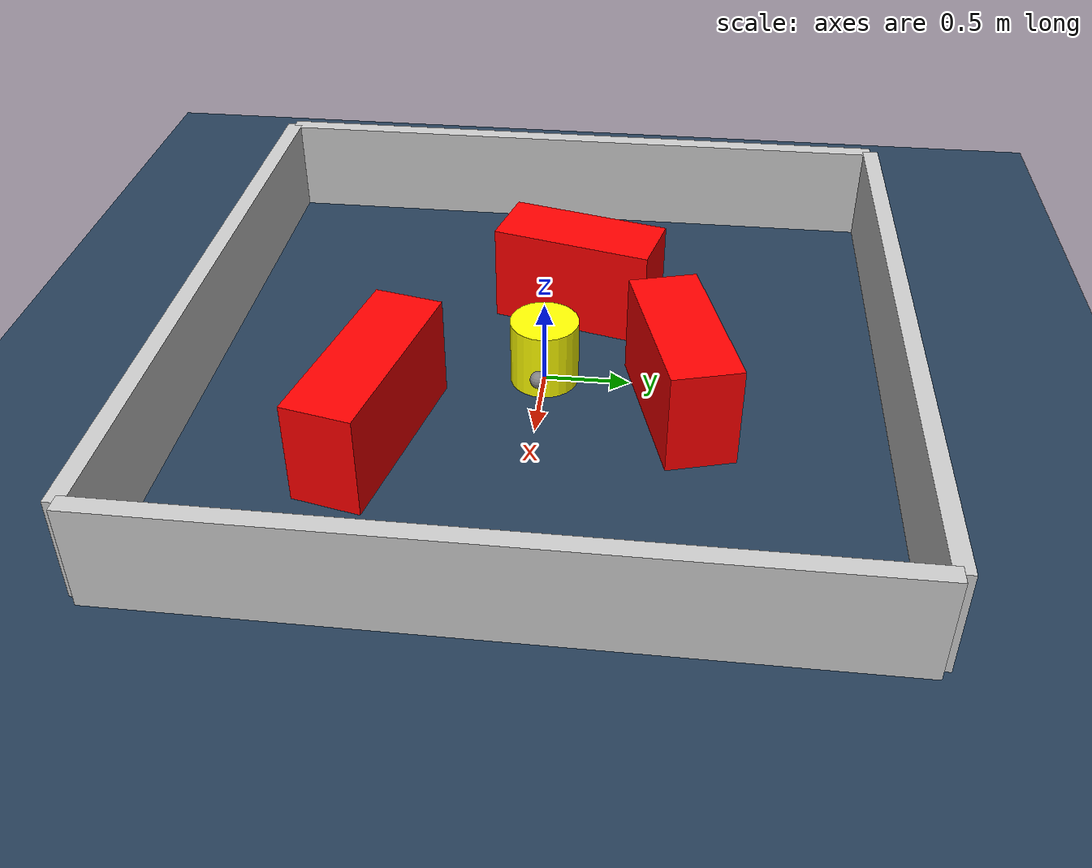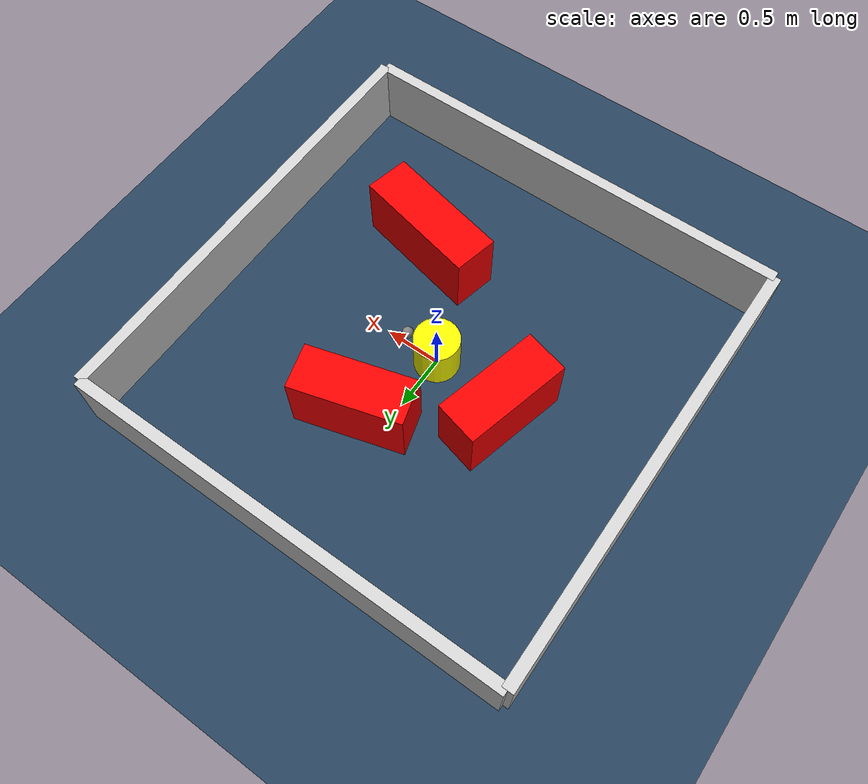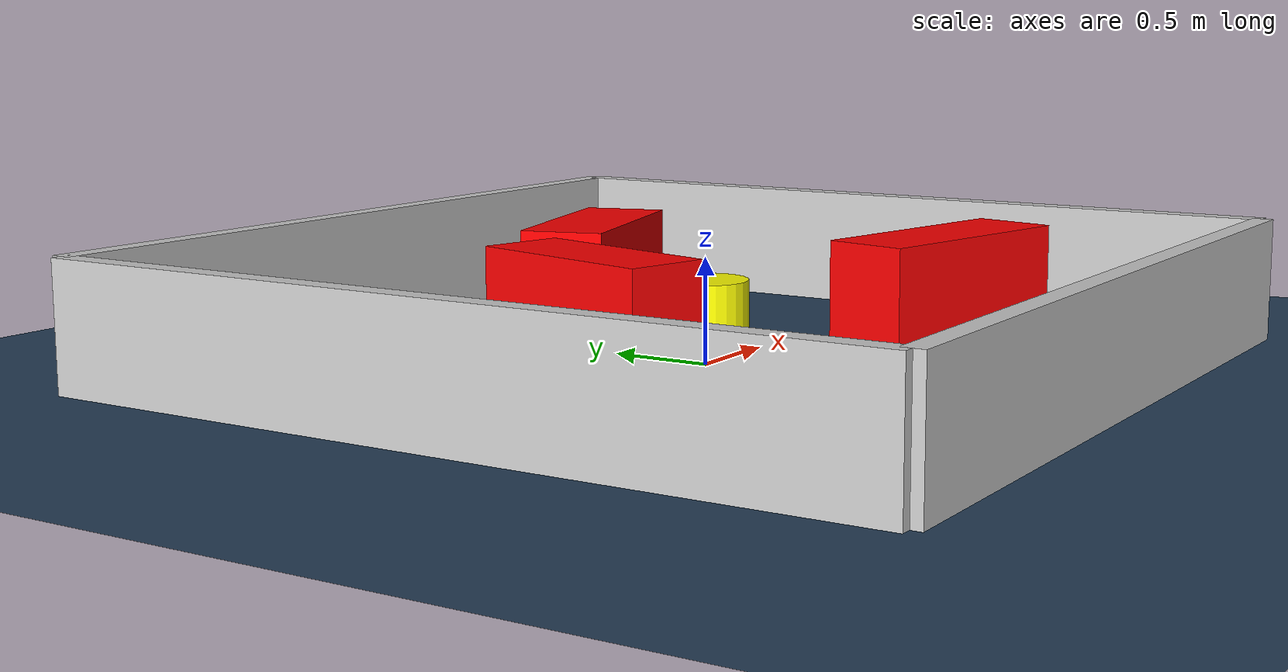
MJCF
<?xml version="1.0" ?>
<mujoco model="generated_environment">
  <option timestep="0.01" integrator="RK4" cone="elliptic"/>
  <default>
    <geom density="1"/>
  </default>
  <asset>
    <texture builtin="gradient" height="3072" rgb1="0.3 0.5 0.7" rgb2="0 0 0" type="skybox" width="512"/>
    <texture builtin="checker" height="300" mark="edge" markrgb="0.8 0.8 0.8" name="groundplane" rgb1="0.2 0.3 0.4" rgb2="0.1 0.2 0.3" type="2d" width="300"/>
    <material name="groundplane" reflectance="0.2" texrepeat="5 5" texture="groundplane" texuniform="true"/>
    <material name="robot" rgba="0.0 1.0 0.0 1"/>
  </asset>
  <worldbody>
    <light dir="0 0 -1" directional="true" pos="0 0 1.5"/>
    <geom condim="4" friction="1.0 0.005 0.001" material="groundplane" name="floor" size="0 0 0.05" type="plane"/>
    <body name="walls">
      <geom name="wall_1" condim="4" pos="-2.0 0.0 0.3" rgba="0.800000011920929 0.800000011920929 0.800000011920929 1.0" size="0.05 2.0 0.3" type="box"/>
      <geom name="wall_2" condim="4" pos="2.0 0.0 0.3" rgba="0.800000011920929 0.800000011920929 0.800000011920929 1.0" size="0.05 2.0 0.3" type="box"/>
      <geom name="wall_3" condim="4" pos="0.0 -2.0 0.3" rgba="0.800000011920929 0.800000011920929 0.800000011920929 1.0" size="2.0 0.05 0.3" type="box"/>
      <geom name="wall_4" condim="4" pos="0.0 2.0 0.3" rgba="0.800000011920929 0.800000011920929 0.800000011920929 1.0" size="2.0 0.05 0.3" type="box"/>
    </body>
    <body name="robot">
      <joint name="joint_x" type="slide" pos="0 0 0" axis="1 0 0"/>
      <joint name="joint_y" type="slide" pos="0 0 0" axis="0 1 0"/>
      <geom name="robot" type="sphere" pos="0.3 0.0 0.2" size="0.05" mass="5." friction="1.0 0.005 0.0001" condim="4" rgba="0.5 0.5 0.5 1.0"/>
      <site name="sensor_ball"/>
    </body>
    <body name="obstacle_movable_1">
      <geom name="obstacle_movable_1" condim="4" pos="0.0 0.0 0.2" euler="0 0 0.0" friction="1.0 0.005 0.001" rgba="1.0 1.0 0.0 1.0" size="0.2 0.2 0.0" type="cylinder" mass="0.1"/>
      <joint type="free"/>
    </body>
    <body name="obstacle_2_static">
      <geom name="obstacle_2_static" condim="4" pos="0.2420447163234105 0.7906455136125914 0.3" euler="0 0 15.913119800669477" friction="1.0 0.005 0.001" rgba="1 0 0 1" size="0.4888858315480089 0.2 0.3" type="box"/>
    </body>
    <body name="obstacle_3_static">
      <geom name="obstacle_3_static" condim="4" pos="-0.7202959376420036 0.13938124375648542 0.3" euler="0 0 75.89356186815027" friction="1.0 0.005 0.001" rgba="1 0 0 1" size="0.48297104884681225 0.2 0.3" type="box"/>
    </body>
    <body name="obstacle_4_static">
      <geom name="obstacle_4_static" condim="4" pos="0.6894350194100383 -0.8753026848683907 0.3" euler="0 0 347.45131532318015" friction="1.0 0.005 0.001" rgba="1 0 0 1" size="0.5733212680748505 0.2 0.3" type="box"/>
    </body>
  </worldbody>
  <actuator>
    <motor name="actuator_x" joint="joint_x" gear="1" ctrlrange="-1 1"/>
    <motor name="actuator_y" joint="joint_y" gear="1" ctrlrange="-1 1"/>
  </actuator>
</mujoco>
